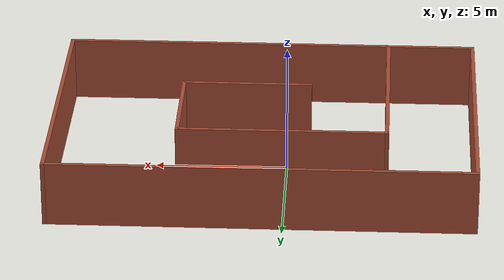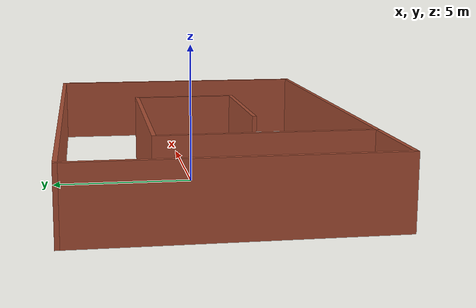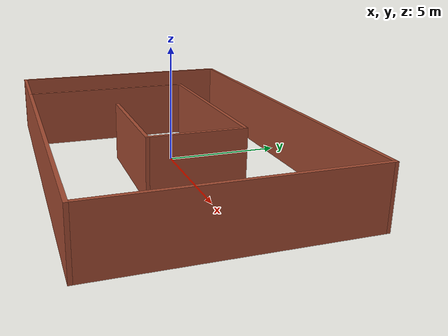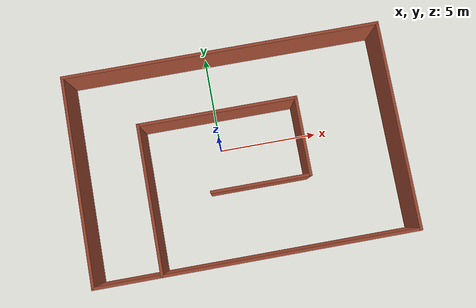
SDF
<?xml version='1.0'?>
<sdf version='1.7'>
  <model name='simple_world'>
    <pose>0.83242 -0.51517 0 0 -0 0</pose>
    <link name='Wall_0'>
      <collision name='Wall_0_Collision'>
        <geometry>
          <box>
            <size>15.9212 0.15 2.5</size>
          </box>
        </geometry>
        <pose>0 0 1.25 0 -0 0</pose>
      </collision>
      <visual name='Wall_0_Visual'>
        <pose>0 0 1.25 0 -0 0</pose>
        <geometry>
          <box>
            <size>15.9212 0.15 2.5</size>
          </box>
        </geometry>
        <material>
          <script>
            <uri>file://media/materials/scripts/gazebo.material</uri>
            <name>Gazebo/Bricks</name>
          </script>
          <ambient>1 1 1 1</ambient>
        </material>
        <meta>
          <layer>0</layer>
        </meta>
      </visual>
      <pose>0.03943 -5.175 0 0 -0 3.14159</pose>
    </link>
    <link name='Wall_11'>
      <collision name='Wall_11_Collision'>
        <geometry>
          <box>
            <size>7.5 0.15 2.5</size>
          </box>
        </geometry>
        <pose>0 0 1.25 0 -0 0</pose>
      </collision>
      <visual name='Wall_11_Visual'>
        <pose>0 0 1.25 0 -0 0</pose>
        <geometry>
          <box>
            <size>7.5 0.15 2.5</size>
          </box>
        </geometry>
        <material>
          <script>
            <uri>file://media/materials/scripts/gazebo.material</uri>
            <name>Gazebo/Bricks</name>
          </script>
          <ambient>1 1 1 1</ambient>
        </material>
        <meta>
          <layer>0</layer>
        </meta>
      </visual>
      <pose>-4.61999 -1.49272 0 0 -0 1.5708</pose>
    </link>
    <link name='Wall_12'>
      <collision name='Wall_12_Collision'>
        <geometry>
          <box>
            <size>8 0.15 2.5</size>
          </box>
        </geometry>
        <pose>0 0 1.25 0 -0 0</pose>
      </collision>
      <visual name='Wall_12_Visual'>
        <pose>0 0 1.25 0 -0 0</pose>
        <geometry>
          <box>
            <size>8 0.15 2.5</size>
          </box>
        </geometry>
        <material>
          <script>
            <uri>file://media/materials/scripts/gazebo.material</uri>
            <name>Gazebo/Bricks</name>
          </script>
          <ambient>1 1 1 1</ambient>
        </material>
        <meta>
          <layer>0</layer>
        </meta>
      </visual>
      <pose>-0.694986 2.18228 0 0 -0 0</pose>
    </link>
    <link name='Wall_13'>
      <collision name='Wall_13_Collision'>
        <geometry>
          <box>
            <size>4 0.15 2.5</size>
          </box>
        </geometry>
        <pose>0 0 1.25 0 -0 0</pose>
      </collision>
      <visual name='Wall_13_Visual'>
        <pose>0 0 1.25 0 -0 0</pose>
        <geometry>
          <box>
            <size>4 0.15 2.5</size>
          </box>
        </geometry>
        <material>
          <script>
            <uri>file://media/materials/scripts/gazebo.material</uri>
            <name>Gazebo/Bricks</name>
          </script>
          <ambient>1 1 1 1</ambient>
        </material>
        <meta>
          <layer>0</layer>
        </meta>
      </visual>
      <pose>3.23001 0.257278 0 0 -0 -1.5708</pose>
    </link>
    <link name='Wall_14'>
      <collision name='Wall_14_Collision'>
        <geometry>
          <box>
            <size>5 0.15 2.5</size>
          </box>
        </geometry>
        <pose>0 0 1.25 0 -0 0</pose>
      </collision>
      <visual name='Wall_14_Visual'>
        <pose>0 0 1.25 0 -0 0</pose>
        <geometry>
          <box>
            <size>5 0.15 2.5</size>
          </box>
        </geometry>
        <material>
          <script>
            <uri>file://media/materials/scripts/gazebo.material</uri>
            <name>Gazebo/Bricks</name>
          </script>
          <ambient>1 1 1 1</ambient>
        </material>
        <meta>
          <layer>0</layer>
        </meta>
      </visual>
      <pose>0.805014 -1.66772 0 0 -0 3.14159</pose>
    </link>
    <link name='Wall_7'>
      <collision name='Wall_7_Collision'>
        <geometry>
          <box>
            <size>10.5 0.15 2.5</size>
          </box>
        </geometry>
        <pose>0 0 1.25 0 -0 0</pose>
      </collision>
      <visual name='Wall_7_Visual'>
        <pose>0 0 1.25 0 -0 0</pose>
        <geometry>
          <box>
            <size>10.5 0.15 2.5</size>
          </box>
        </geometry>
        <material>
          <script>
            <uri>file://media/materials/scripts/gazebo.material</uri>
            <name>Gazebo/Bricks</name>
          </script>
          <ambient>1 1 1 1</ambient>
        </material>
        <meta>
          <layer>0</layer>
        </meta>
      </visual>
      <pose>7.92498 -0 0 0 -0 1.5708</pose>
    </link>
    <link name='Wall_8'>
      <collision name='Wall_8_Collision'>
        <geometry>
          <box>
            <size>16 0.15 2.5</size>
          </box>
        </geometry>
        <pose>0 0 1.25 0 -0 0</pose>
      </collision>
      <visual name='Wall_8_Visual'>
        <pose>0 0 1.25 0 -0 0</pose>
        <geometry>
          <box>
            <size>16 0.15 2.5</size>
          </box>
        </geometry>
        <material>
          <script>
            <uri>file://media/materials/scripts/gazebo.material</uri>
            <name>Gazebo/Bricks</name>
          </script>
          <ambient>1 1 1 1</ambient>
        </material>
        <meta>
          <layer>0</layer>
        </meta>
      </visual>
      <pose>-2.1e-05 5.175 0 0 -0 3.14159</pose>
    </link>
    <link name='Wall_9'>
      <collision name='Wall_9_Collision'>
        <geometry>
          <box>
            <size>10.5 0.15 2.5</size>
          </box>
        </geometry>
        <pose>0 0 1.25 0 -0 0</pose>
      </collision>
      <visual name='Wall_9_Visual'>
        <pose>0 0 1.25 0 -0 0</pose>
        <geometry>
          <box>
            <size>10.5 0.15 2.5</size>
          </box>
        </geometry>
        <material>
          <script>
            <uri>file://media/materials/scripts/gazebo.material</uri>
            <name>Gazebo/Bricks</name>
          </script>
          <ambient>1 1 1 1</ambient>
        </material>
        <meta>
          <layer>0</layer>
        </meta>
      </visual>
      <pose>-7.92502 -0 0 0 -0 -1.5708</pose>
    </link>
    <static>1</static>
  </model>
</sdf>
